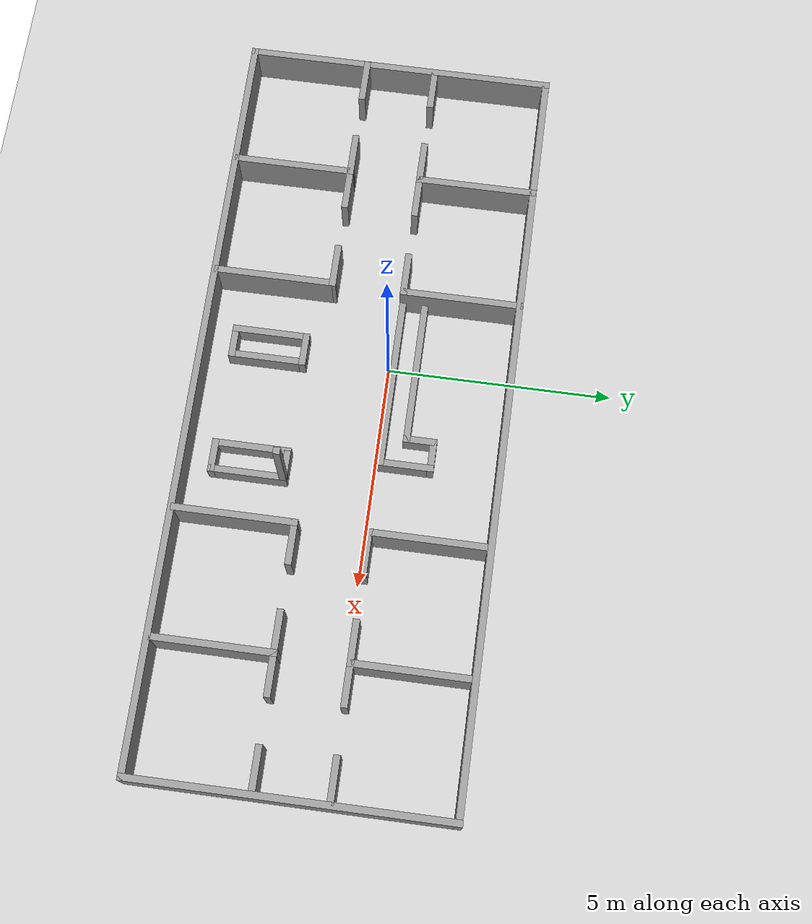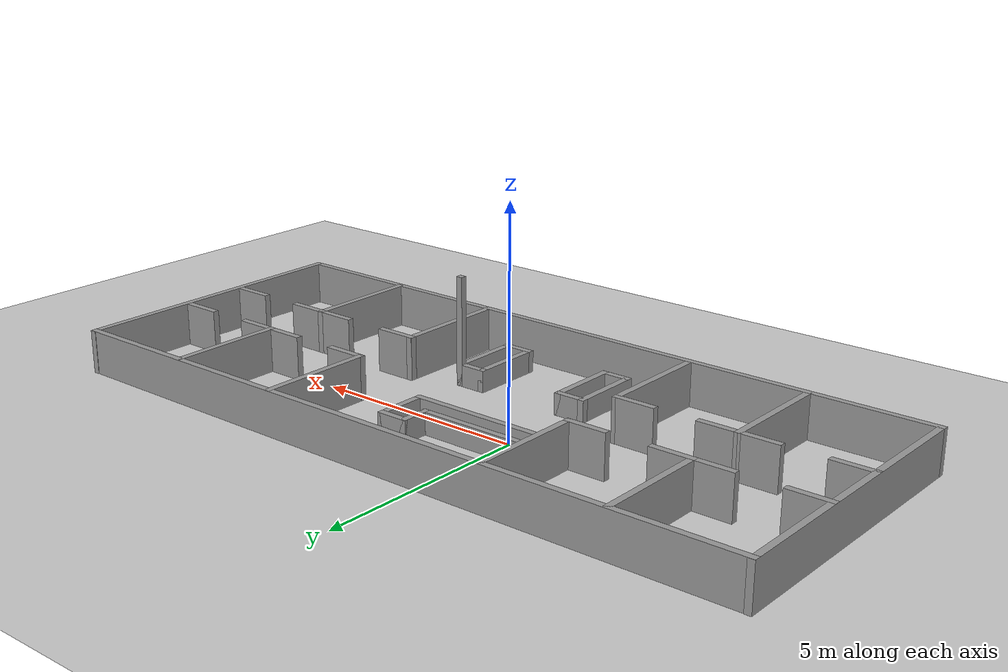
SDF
<sdf version="1.7">
 <world name="default">
  <light name="sun" type="directional">
   <pose>0 0 10 0 -0 0</pose>
   <diffuse>0.8 0.8 0.8 1</diffuse>
   <specular>0.2 0.2 0.2 1</specular>
   <attenuation>
    <range>1000</range>
    <constant>0.9</constant>
    <linear>0.01</linear>
    <quadratic>0.001</quadratic>
   </attenuation>
   <direction>-0.5 0.1 -0.9</direction>
   <spot><inner_angle>0</inner_angle><outer_angle>0</outer_angle><falloff>0</falloff></spot>
  </light>
  <model name="ground_plane">
   <static>1</static>
   <link name="link">
    <collision name="collision">
     <geometry><plane><normal>0 0 1</normal><size>100 100</size></plane></geometry>
     <surface>
      <contact><collide_bitmask>65535</collide_bitmask></contact>
      <friction><ode><mu>100</mu><mu2>50</mu2></ode></friction>
     </surface>
    </collision>
    <visual name="visual">
     <cast_shadows>0</cast_shadows>
     <geometry><plane><normal>0 0 1</normal><size>100 100</size></plane></geometry>
     <material>
      <script><uri>file://media/materials/scripts/gazebo.material</uri><name>Gazebo/Grey</name></script>
     </material>
    </visual>
   </link>
  </model>
  <gravity>0 0 -9.8</gravity>
  <magnetic_field>6e-06 2.3e-05 -4.2e-05</magnetic_field>
  <atmosphere type="adiabatic"/>
  <physics type="ode">
   <max_step_size>0.001</max_step_size>
   <real_time_factor>1</real_time_factor>
   <real_time_update_rate>1000</real_time_update_rate>
  </physics>
  <scene><ambient>0.4 0.4 0.4 1</ambient><background>0.7 0.7 0.7 1</background><shadows>1</shadows></scene>
  <audio><device>default</device></audio>
  <spherical_coordinates>
   <surface_model>EARTH_WGS84</surface_model>
   <latitude_deg>0</latitude_deg>
   <longitude_deg>0</longitude_deg>
   <elevation>0</elevation>
   <heading_deg>0</heading_deg>
  </spherical_coordinates>
  <model name="Motel">
   <pose>1.265 -0.697707 0 0 -0 0</pose>
   <link name="Wall_0">
    <collision name="Wall_0_Collision">
     <geometry><box><size>17 0.15 1</size></box></geometry>
     <pose>0 0 0.5 0 -0 0</pose>
    </collision>
    <visual name="Wall_0_Visual">
     <pose>0 0 0.5 0 -0 0</pose>
     <geometry><box><size>17 0.15 1</size></box></geometry>
     <material>
      <script><uri>file://media/materials/scripts/gazebo.material</uri><name>Gazebo/Grey</name></script>
      <ambient>1 1 1 1</ambient>
     </material>
     <meta><layer>0</layer></meta>
    </visual>
    <pose>-0 -3.44229 0 0 -0 3.14159</pose>
   </link>
   <link name="Wall_1">
    <collision name="Wall_1_Collision">
     <geometry><box><size>7.03459 0.15 1</size></box></geometry>
     <pose>0 0 0.5 0 -0 0</pose>
    </collision>
    <visual name="Wall_1_Visual">
     <pose>0 0 0.5 0 -0 0</pose>
     <geometry><box><size>7.03459 0.15 1</size></box></geometry>
     <material>
      <script><uri>file://media/materials/scripts/gazebo.material</uri><name>Gazebo/Grey</name></script>
      <ambient>1 1 1 1</ambient>
     </material>
     <meta><layer>0</layer></meta>
    </visual>
    <pose>-8.425 0 0 0 -0 1.5708</pose>
   </link>
   <link name="Wall_10">
    <collision name="Wall_10_Collision">
     <geometry><box><size>2.75 0.15 1</size></box></geometry>
     <pose>0 0 0.5 0 -0 0</pose>
    </collision>
    <visual name="Wall_10_Visual">
     <pose>0 0 0.5 0 -0 0</pose>
     <geometry><box><size>2.75 0.15 1</size></box></geometry>
     <material>
      <script><uri>file://media/materials/scripts/gazebo.material</uri><name>Gazebo/Grey</name></script>
      <ambient>1 1 1 1</ambient>
     </material>
     <meta><layer>0</layer></meta>
    </visual>
    <pose>2.741 -2.07629 0 0 -0 -1.5708</pose>
   </link>
   <link name="Wall_100">
    <collision name="Wall_100_Collision">
     <geometry><box><size>1 0.15 1</size></box></geometry>
     <pose>0 0 0.5 0 -0 0</pose>
    </collision>
    <visual name="Wall_100_Visual">
     <pose>0 0 0.5 0 -0 0</pose>
     <geometry><box><size>1 0.15 1</size></box></geometry>
     <material>
      <script><uri>file://media/materials/scripts/gazebo.material</uri><name>Gazebo/Grey</name></script>
      <ambient>1 1 1 1</ambient>
     </material>
     <meta><layer>0</layer></meta>
    </visual>
    <pose>-7.992 0.823707 0 0 -0 3.14159</pose>
   </link>
   <link name="Wall_102">
    <collision name="Wall_102_Collision">
     <geometry><box><size>1 0.15 1</size></box></geometry>
     <pose>0 0 0.5 0 -0 0</pose>
    </collision>
    <visual name="Wall_102_Visual">
     <pose>0 0 0.5 0 -0 0</pose>
     <geometry><box><size>1 0.15 1</size></box></geometry>
     <material>
      <script><uri>file://media/materials/scripts/gazebo.material</uri><name>Gazebo/Grey</name></script>
      <ambient>1 1 1 1</ambient>
     </material>
     <meta><layer>0</layer></meta>
    </visual>
    <pose>-5.192 0.823707 0 0 -0 0</pose>
   </link>
   <link name="Wall_105">
    <collision name="Wall_105_Collision">
     <geometry><box><size>2.75 0.15 1</size></box></geometry>
     <pose>0 0 0.5 0 -0 0</pose>
    </collision>
    <visual name="Wall_105_Visual">
     <pose>0 0 0.5 0 -0 0</pose>
     <geometry><box><size>2.75 0.15 1</size></box></geometry>
     <material>
      <script><uri>file://media/materials/scripts/gazebo.material</uri><name>Gazebo/Grey</name></script>
      <ambient>1 1 1 1</ambient>
     </material>
     <meta><layer>0</layer></meta>
    </visual>
    <pose>-2.817 2.12371 0 0 -0 1.5708</pose>
   </link>
   <link name="Wall_107">
    <collision name="Wall_107_Collision">
     <geometry><box><size>1 0.15 1</size></box></geometry>
     <pose>0 0 0.5 0 -0 0</pose>
    </collision>
    <visual name="Wall_107_Visual">
     <pose>0 0 0.5 0 -0 0</pose>
     <geometry><box><size>1 0.15 1</size></box></geometry>
     <material>
      <script><uri>file://media/materials/scripts/gazebo.material</uri><name>Gazebo/Grey</name></script>
      <ambient>1 1 1 1</ambient>
     </material>
     <meta><layer>0</layer></meta>
    </visual>
    <pose>-3.242 0.823707 0 0 -0 3.14159</pose>
   </link>
   <link name="Wall_115">
    <collision name="Wall_115_Collision">
     <geometry><box><size>0.75 0.15 0.5</size></box></geometry>
     <pose>0 0 0.25 0 -0 0</pose>
    </collision>
    <visual name="Wall_115_Visual">
     <pose>0 0 0.25 0 -0 0</pose>
     <geometry><box><size>0.75 0.15 0.5</size></box></geometry>
     <material>
      <script><uri>file://media/materials/scripts/gazebo.material</uri><name>Gazebo/Grey</name></script>
      <ambient>1 1 1 1</ambient>
     </material>
     <meta><layer>0</layer></meta>
    </visual>
    <pose>1.353 -1.22129 0 0 -0 0</pose>
   </link>
   <link name="Wall_116">
    <collision name="Wall_116_Collision">
     <geometry><box><size>1.75 0.15 0.5</size></box></geometry>
     <pose>0 0 0.25 0 -0 0</pose>
    </collision>
    <visual name="Wall_116_Visual">
     <pose>0 0 0.25 0 -0 0</pose>
     <geometry><box><size>1.75 0.15 0.5</size></box></geometry>
     <material>
      <script><uri>file://media/materials/scripts/gazebo.material</uri><name>Gazebo/Grey</name></script>
      <ambient>1 1 1 1</ambient>
     </material>
     <meta><layer>0</layer></meta>
    </visual>
    <pose>1.653 -2.02129 0 0 -0 -1.5708</pose>
   </link>
   <link name="Wall_117">
    <collision name="Wall_117_Collision">
     <geometry><box><size>0.75 0.15 0.5</size></box></geometry>
     <pose>0 0 0.25 0 -0 0</pose>
    </collision>
    <visual name="Wall_117_Visual">
     <pose>0 0 0.25 0 -0 0</pose>
     <geometry><box><size>0.75 0.15 0.5</size></box></geometry>
     <material>
      <script><uri>file://media/materials/scripts/gazebo.material</uri><name>Gazebo/Grey</name></script>
      <ambient>1 1 1 1</ambient>
     </material>
     <meta><layer>0</layer></meta>
    </visual>
    <pose>1.353 -2.82129 0 0 -0 3.14159</pose>
   </link>
   <link name="Wall_118">
    <collision name="Wall_118_Collision">
     <geometry><box><size>1.75 0.15 0.5</size></box></geometry>
     <pose>0 0 0.25 0 -0 0</pose>
    </collision>
    <visual name="Wall_118_Visual">
     <pose>0 0 0.25 0 -0 0</pose>
     <geometry><box><size>1.75 0.15 0.5</size></box></geometry>
     <material>
      <script><uri>file://media/materials/scripts/gazebo.material</uri><name>Gazebo/Grey</name></script>
      <ambient>1 1 1 1</ambient>
     </material>
     <meta><layer>0</layer></meta>
    </visual>
    <pose>1.053 -2.02129 0 0 -0 1.5708</pose>
   </link>
   <link name="Wall_12">
    <collision name="Wall_12_Collision">
     <geometry><box><size>2.75 0.15 1</size></box></geometry>
     <pose>0 0 0.5 0 -0 0</pose>
    </collision>
    <visual name="Wall_12_Visual">
     <pose>0 0 0.5 0 -0 0</pose>
     <geometry><box><size>2.75 0.15 1</size></box></geometry>
     <material>
      <script><uri>file://media/materials/scripts/gazebo.material</uri><name>Gazebo/Grey</name></script>
      <ambient>1 1 1 1</ambient>
     </material>
     <meta><layer>0</layer></meta>
    </visual>
    <pose>5.541 2.12371 0 0 -0 -1.5708</pose>
   </link>
   <link name="Wall_16">
    <collision name="Wall_16_Collision">
     <geometry><box><size>2.75 0.15 1</size></box></geometry>
     <pose>0 0 0.5 0 -0 0</pose>
    </collision>
    <visual name="Wall_16_Visual">
     <pose>0 0 0.5 0 -0 0</pose>
     <geometry><box><size>2.75 0.15 1</size></box></geometry>
     <material>
      <script><uri>file://media/materials/scripts/gazebo.material</uri><name>Gazebo/Grey</name></script>
      <ambient>1 1 1 1</ambient>
     </material>
     <meta><layer>0</layer></meta>
    </visual>
    <pose>2.741 2.12371 0 0 -0 1.5708</pose>
   </link>
   <link name="Wall_19">
    <collision name="Wall_19_Collision">
     <geometry><box><size>2.75 0.15 1</size></box></geometry>
     <pose>0 0 0.5 0 -0 0</pose>
    </collision>
    <visual name="Wall_19_Visual">
     <pose>0 0 0.5 0 -0 0</pose>
     <geometry><box><size>2.75 0.15 1</size></box></geometry>
     <material>
      <script><uri>file://media/materials/scripts/gazebo.material</uri><name>Gazebo/Grey</name></script>
      <ambient>1 1 1 1</ambient>
     </material>
     <meta><layer>0</layer></meta>
    </visual>
    <pose>-5.61676 -2.07629 0 0 -0 -1.57061</pose>
   </link>
   <link name="Wall_22">
    <collision name="Wall_22_Collision">
     <geometry><box><size>2.75 0.15 1</size></box></geometry>
     <pose>0 0 0.5 0 -0 0</pose>
    </collision>
    <visual name="Wall_22_Visual">
     <pose>0 0 0.5 0 -0 0</pose>
     <geometry><box><size>2.75 0.15 1</size></box></geometry>
     <material>
      <script><uri>file://media/materials/scripts/gazebo.material</uri><name>Gazebo/Grey</name></script>
      <ambient>1 1 1 1</ambient>
     </material>
     <meta><layer>0</layer></meta>
    </visual>
    <pose>-2.81676 -2.07629 0 0 -0 -1.57061</pose>
   </link>
   <link name="Wall_25">
    <collision name="Wall_25_Collision">
     <geometry><box><size>2.75 0.15 1</size></box></geometry>
     <pose>0 0 0.5 0 -0 0</pose>
    </collision>
    <visual name="Wall_25_Visual">
     <pose>0 0 0.5 0 -0 0</pose>
     <geometry><box><size>2.75 0.15 1</size></box></geometry>
     <material>
      <script><uri>file://media/materials/scripts/gazebo.material</uri><name>Gazebo/Grey</name></script>
      <ambient>1 1 1 1</ambient>
     </material>
     <meta><layer>0</layer></meta>
    </visual>
    <pose>-5.617 2.12371 0 0 -0 1.5708</pose>
   </link>
   <link name="Wall_3">
    <collision name="Wall_3_Collision">
     <geometry><box><size>7.03459 0.15 1</size></box></geometry>
     <pose>0 0 0.5 0 -0 0</pose>
    </collision>
    <visual name="Wall_3_Visual">
     <pose>0 0 0.5 0 -0 0</pose>
     <geometry><box><size>7.03459 0.15 1</size></box></geometry>
     <material>
      <script><uri>file://media/materials/scripts/gazebo.material</uri><name>Gazebo/Grey</name></script>
      <ambient>1 1 1 1</ambient>
     </material>
     <meta><layer>0</layer></meta>
    </visual>
    <pose>8.425 0 0 0 -0 1.5708</pose>
   </link>
   <link name="Wall_30">
    <collision name="Wall_30_Collision">
     <geometry><box><size>4 0.15 0.5</size></box></geometry>
     <pose>0 0 0.25 0 -0 0</pose>
    </collision>
    <visual name="Wall_30_Visual">
     <pose>0 0 0.25 0 -0 0</pose>
     <geometry><box><size>4 0.15 0.5</size></box></geometry>
     <material>
      <script><uri>file://media/materials/scripts/gazebo.material</uri><name>Gazebo/Grey</name></script>
      <ambient>1 1 1 1</ambient>
     </material>
     <meta><layer>0</layer></meta>
    </visual>
    <pose>-0.891759 0.823707 0 0 -0 0</pose>
   </link>
   <link name="Wall_31">
    <collision name="Wall_31_Collision">
     <geometry><box><size>1.25 0.15 0.5</size></box></geometry>
     <pose>0 0 0.25 0 -0 0</pose>
    </collision>
    <visual name="Wall_31_Visual">
     <pose>0 0 0.25 0 -0 0</pose>
     <geometry><box><size>1.25 0.15 0.5</size></box></geometry>
     <material>
      <script><uri>file://media/materials/scripts/gazebo.material</uri><name>Gazebo/Grey</name></script>
      <ambient>1 1 1 1</ambient>
     </material>
     <meta><layer>0</layer></meta>
    </visual>
    <pose>1.03348 1.37371 0 0 -0 1.5708</pose>
   </link>
   <link name="Wall_32">
    <collision name="Wall_32_Collision">
     <geometry><box><size>0.75 0.15 0.5</size></box></geometry>
     <pose>0 0 0.25 0 -0 0</pose>
    </collision>
    <visual name="Wall_32_Visual">
     <pose>0 0 0.25 0 -0 0</pose>
     <geometry><box><size>0.75 0.15 0.5</size></box></geometry>
     <material>
      <script><uri>file://media/materials/scripts/gazebo.material</uri><name>Gazebo/Grey</name></script>
      <ambient>1 1 1 1</ambient>
     </material>
     <meta><layer>0</layer></meta>
    </visual>
    <pose>0.733483 1.92371 0 0 -0 3.14159</pose>
   </link>
   <link name="Wall_33">
    <collision name="Wall_33_Collision">
     <geometry><box><size>0.75 0.15 0.5</size></box></geometry>
     <pose>0 0 0.25 0 -0 0</pose>
    </collision>
    <visual name="Wall_33_Visual">
     <pose>0 0 0.25 0 -0 0</pose>
     <geometry><box><size>0.75 0.15 0.5</size></box></geometry>
     <material>
      <script><uri>file://media/materials/scripts/gazebo.material</uri><name>Gazebo/Grey</name></script>
      <ambient>1 1 1 1</ambient>
     </material>
     <meta><layer>0</layer></meta>
    </visual>
    <pose>0.433483 1.62371 0 0 -0 -1.5708</pose>
   </link>
   <link name="Wall_34">
    <collision name="Wall_34_Collision">
     <geometry><box><size>3.25 0.15 0.5</size></box></geometry>
     <pose>0 0 0.25 0 -0 0</pose>
    </collision>
    <visual name="Wall_34_Visual">
     <pose>0 0 0.25 0 -0 0</pose>
     <geometry><box><size>3.25 0.15 0.5</size></box></geometry>
     <material>
      <script><uri>file://media/materials/scripts/gazebo.material</uri><name>Gazebo/Grey</name></script>
      <ambient>1 1 1 1</ambient>
     </material>
     <meta><layer>0</layer></meta>
    </visual>
    <pose>-1.11652 1.32371 0 0 -0 3.14159</pose>
   </link>
   <link name="Wall_39">
    <collision name="Wall_39_Collision">
     <geometry><box><size>0.75 0.15 0.5</size></box></geometry>
     <pose>0 0 0.25 0 -0 0</pose>
    </collision>
    <visual name="Wall_39_Visual">
     <pose>0 0 0.25 0 -0 0</pose>
     <geometry><box><size>0.75 0.15 0.5</size></box></geometry>
     <material>
      <script><uri>file://media/materials/scripts/gazebo.material</uri><name>Gazebo/Grey</name></script>
      <ambient>1 1 1 1</ambient>
     </material>
     <meta><layer>0</layer></meta>
    </visual>
    <pose>-1.347 -2.81229 0 0 -0 0</pose>
   </link>
   <link name="Wall_4">
    <collision name="Wall_4_Collision">
     <geometry><box><size>17 0.15 1</size></box></geometry>
     <pose>0 0 0.5 0 -0 0</pose>
    </collision>
    <visual name="Wall_4_Visual">
     <pose>0 0 0.5 0 -0 0</pose>
     <geometry><box><size>17 0.15 1</size></box></geometry>
     <material>
      <script><uri>file://media/materials/scripts/gazebo.material</uri><name>Gazebo/Grey</name></script>
      <ambient>1 1 1 1</ambient>
     </material>
     <meta><layer>0</layer></meta>
    </visual>
    <pose>-0 3.43365 0 0 -0 3.14159</pose>
   </link>
   <link name="Wall_40">
    <collision name="Wall_40_Collision">
     <geometry><box><size>1.741 0.15 0.5</size></box></geometry>
     <pose>0 0 0.25 0 -0 0</pose>
    </collision>
    <visual name="Wall_40_Visual">
     <pose>0 0 0.25 0 -0 0</pose>
     <geometry><box><size>1.741 0.15 0.5</size></box></geometry>
     <material>
      <script><uri>file://media/materials/scripts/gazebo.material</uri><name>Gazebo/Grey</name></script>
      <ambient>1 1 1 1</ambient>
     </material>
     <meta><layer>0</layer></meta>
    </visual>
    <pose>-1.047 -2.01679 0 0 -0 1.5708</pose>
   </link>
   <link name="Wall_41">
    <collision name="Wall_41_Collision">
     <geometry><box><size>0.75 0.15 0.5</size></box></geometry>
     <pose>0 0 0.25 0 -0 0</pose>
    </collision>
    <visual name="Wall_41_Visual">
     <pose>0 0 0.25 0 -0 0</pose>
     <geometry><box><size>0.75 0.15 0.5</size></box></geometry>
     <material>
      <script><uri>file://media/materials/scripts/gazebo.material</uri><name>Gazebo/Grey</name></script>
      <ambient>1 1 1 1</ambient>
     </material>
     <meta><layer>0</layer></meta>
    </visual>
    <pose>-1.347 -1.22129 0 0 -0 3.14159</pose>
   </link>
   <link name="Wall_42">
    <collision name="Wall_42_Collision">
     <geometry><box><size>1.74135 0.15 0.5</size></box></geometry>
     <pose>0 0 0.25 0 -0 0</pose>
    </collision>
    <visual name="Wall_42_Visual">
     <pose>0 0 0.25 0 -0 0</pose>
     <geometry><box><size>1.74135 0.15 0.5</size></box></geometry>
     <material>
      <script><uri>file://media/materials/scripts/gazebo.material</uri><name>Gazebo/Grey</name></script>
      <ambient>1 1 1 1</ambient>
     </material>
     <meta><layer>0</layer></meta>
    </visual>
    <pose>-1.647 -2.01679 0 0 -0 -1.5708</pose>
   </link>
   <link name="Wall_50">
    <collision name="Wall_50_Collision">
     <geometry><box><size>0.15 0.15 2.5</size></box></geometry>
     <pose>0 0 1.25 0 -0 0</pose>
    </collision>
    <visual name="Wall_50_Visual">
     <pose>0 0 1.25 0 -0 0</pose>
     <geometry><box><size>0.15 0.15 2.5</size></box></geometry>
     <material>
      <script><uri>file://media/materials/scripts/gazebo.material</uri><name>Gazebo/Grey</name></script>
      <ambient>1 1 1 1</ambient>
     </material>
     <meta><layer>0</layer></meta>
    </visual>
    <pose>1.653 -1.22129 0 0 -0 0</pose>
   </link>
   <link name="Wall_59">
    <collision name="Wall_59_Collision">
     <geometry><box><size>1 0.15 1</size></box></geometry>
     <pose>0 0 0.5 0 -0 0</pose>
    </collision>
    <visual name="Wall_59_Visual">
     <pose>0 0 0.5 0 -0 0</pose>
     <geometry><box><size>1 0.15 1</size></box></geometry>
     <material>
      <script><uri>file://media/materials/scripts/gazebo.material</uri><name>Gazebo/Grey</name></script>
      <ambient>1 1 1 1</ambient>
     </material>
     <meta><layer>0</layer></meta>
    </visual>
    <pose>5.966 -0.776293 0 0 -0 0</pose>
   </link>
   <link name="Wall_6">
    <collision name="Wall_6_Collision">
     <geometry><box><size>2.75 0.15 1</size></box></geometry>
     <pose>0 0 0.5 0 -0 0</pose>
    </collision>
    <visual name="Wall_6_Visual">
     <pose>0 0 0.5 0 -0 0</pose>
     <geometry><box><size>2.75 0.15 1</size></box></geometry>
     <material>
      <script><uri>file://media/materials/scripts/gazebo.material</uri><name>Gazebo/Grey</name></script>
      <ambient>1 1 1 1</ambient>
     </material>
     <meta><layer>0</layer></meta>
    </visual>
    <pose>5.541 -2.07629 0 0 -0 1.5708</pose>
   </link>
   <link name="Wall_61">
    <collision name="Wall_61_Collision">
     <geometry><box><size>1 0.15 1</size></box></geometry>
     <pose>0 0 0.5 0 -0 0</pose>
    </collision>
    <visual name="Wall_61_Visual">
     <pose>0 0 0.5 0 -0 0</pose>
     <geometry><box><size>1 0.15 1</size></box></geometry>
     <material>
      <script><uri>file://media/materials/scripts/gazebo.material</uri><name>Gazebo/Grey</name></script>
      <ambient>1 1 1 1</ambient>
     </material>
     <meta><layer>0</layer></meta>
    </visual>
    <pose>7.916 -0.776293 0 0 -0 0</pose>
   </link>
   <link name="Wall_63">
    <collision name="Wall_63_Collision">
     <geometry><box><size>1 0.15 1</size></box></geometry>
     <pose>0 0 0.5 0 -0 0</pose>
    </collision>
    <visual name="Wall_63_Visual">
     <pose>0 0 0.5 0 -0 0</pose>
     <geometry><box><size>1 0.15 1</size></box></geometry>
     <material>
      <script><uri>file://media/materials/scripts/gazebo.material</uri><name>Gazebo/Grey</name></script>
      <ambient>1 1 1 1</ambient>
     </material>
     <meta><layer>0</layer></meta>
    </visual>
    <pose>5.116 -0.776293 0 0 -0 3.14159</pose>
   </link>
   <link name="Wall_65">
    <collision name="Wall_65_Collision">
     <geometry><box><size>1 0.15 1</size></box></geometry>
     <pose>0 0 0.5 0 -0 0</pose>
    </collision>
    <visual name="Wall_65_Visual">
     <pose>0 0 0.5 0 -0 0</pose>
     <geometry><box><size>1 0.15 1</size></box></geometry>
     <material>
      <script><uri>file://media/materials/scripts/gazebo.material</uri><name>Gazebo/Grey</name></script>
      <ambient>1 1 1 1</ambient>
     </material>
     <meta><layer>0</layer></meta>
    </visual>
    <pose>3.166 -0.776293 0 0 -0 3.14159</pose>
   </link>
   <link name="Wall_67">
    <collision name="Wall_67_Collision">
     <geometry><box><size>1 0.15 1</size></box></geometry>
     <pose>0 0 0.5 0 -0 0</pose>
    </collision>
    <visual name="Wall_67_Visual">
     <pose>0 0 0.5 0 -0 0</pose>
     <geometry><box><size>1 0.15 1</size></box></geometry>
     <material>
      <script><uri>file://media/materials/scripts/gazebo.material</uri><name>Gazebo/Grey</name></script>
      <ambient>1 1 1 1</ambient>
     </material>
     <meta><layer>0</layer></meta>
    </visual>
    <pose>3.166 0.823707 0 0 -0 0</pose>
   </link>
   <link name="Wall_69">
    <collision name="Wall_69_Collision">
     <geometry><box><size>1 0.15 1</size></box></geometry>
     <pose>0 0 0.5 0 -0 0</pose>
    </collision>
    <visual name="Wall_69_Visual">
     <pose>0 0 0.5 0 -0 0</pose>
     <geometry><box><size>1 0.15 1</size></box></geometry>
     <material>
      <script><uri>file://media/materials/scripts/gazebo.material</uri><name>Gazebo/Grey</name></script>
      <ambient>1 1 1 1</ambient>
     </material>
     <meta><layer>0</layer></meta>
    </visual>
    <pose>5.116 0.823707 0 0 -0 3.14159</pose>
   </link>
   <link name="Wall_71">
    <collision name="Wall_71_Collision">
     <geometry><box><size>1 0.15 1</size></box></geometry>
     <pose>0 0 0.5 0 -0 0</pose>
    </collision>
    <visual name="Wall_71_Visual">
     <pose>0 0 0.5 0 -0 0</pose>
     <geometry><box><size>1 0.15 1</size></box></geometry>
     <material>
      <script><uri>file://media/materials/scripts/gazebo.material</uri><name>Gazebo/Grey</name></script>
      <ambient>1 1 1 1</ambient>
     </material>
     <meta><layer>0</layer></meta>
    </visual>
    <pose>5.966 0.823707 0 0 -0 0</pose>
   </link>
   <link name="Wall_74">
    <collision name="Wall_74_Collision">
     <geometry><box><size>1 0.15 1</size></box></geometry>
     <pose>0 0 0.5 0 -0 0</pose>
    </collision>
    <visual name="Wall_74_Visual">
     <pose>0 0 0.5 0 -0 0</pose>
     <geometry><box><size>1 0.15 1</size></box></geometry>
     <material>
      <script><uri>file://media/materials/scripts/gazebo.material</uri><name>Gazebo/Grey</name></script>
      <ambient>1 1 1 1</ambient>
     </material>
     <meta><layer>0</layer></meta>
    </visual>
    <pose>7.916 0.823707 0 0 -0 0</pose>
   </link>
   <link name="Wall_84">
    <collision name="Wall_84_Collision">
     <geometry><box><size>1 0.15 1</size></box></geometry>
     <pose>0 0 0.5 0 -0 0</pose>
    </collision>
    <visual name="Wall_84_Visual">
     <pose>0 0 0.5 0 -0 0</pose>
     <geometry><box><size>1 0.15 1</size></box></geometry>
     <material>
      <script><uri>file://media/materials/scripts/gazebo.material</uri><name>Gazebo/Grey</name></script>
      <ambient>1 1 1 1</ambient>
     </material>
     <meta><layer>0</layer></meta>
    </visual>
    <pose>-3.242 -0.776293 0 0 -0 3.14159</pose>
   </link>
   <link name="Wall_86">
    <collision name="Wall_86_Collision">
     <geometry><box><size>1 0.15 1</size></box></geometry>
     <pose>0 0 0.5 0 -0 0</pose>
    </collision>
    <visual name="Wall_86_Visual">
     <pose>0 0 0.5 0 -0 0</pose>
     <geometry><box><size>1 0.15 1</size></box></geometry>
     <material>
      <script><uri>file://media/materials/scripts/gazebo.material</uri><name>Gazebo/Grey</name></script>
      <ambient>1 1 1 1</ambient>
     </material>
     <meta><layer>0</layer></meta>
    </visual>
    <pose>-5.192 -0.776293 0 0 -0 3.14159</pose>
   </link>
   <link name="Wall_88">
    <collision name="Wall_88_Collision">
     <geometry><box><size>1 0.15 1</size></box></geometry>
     <pose>0 0 0.5 0 -0 0</pose>
    </collision>
    <visual name="Wall_88_Visual">
     <pose>0 0 0.5 0 -0 0</pose>
     <geometry><box><size>1 0.15 1</size></box></geometry>
     <material>
      <script><uri>file://media/materials/scripts/gazebo.material</uri><name>Gazebo/Grey</name></script>
      <ambient>1 1 1 1</ambient>
     </material>
     <meta><layer>0</layer></meta>
    </visual>
    <pose>-6.042 -0.776293 0 0 -0 3.14159</pose>
   </link>
   <link name="Wall_90">
    <collision name="Wall_90_Collision">
     <geometry><box><size>1 0.15 1</size></box></geometry>
     <pose>0 0 0.5 0 -0 0</pose>
    </collision>
    <visual name="Wall_90_Visual">
     <pose>0 0 0.5 0 -0 0</pose>
     <geometry><box><size>1 0.15 1</size></box></geometry>
     <material>
      <script><uri>file://media/materials/scripts/gazebo.material</uri><name>Gazebo/Grey</name></script>
      <ambient>1 1 1 1</ambient>
     </material>
     <meta><layer>0</layer></meta>
    </visual>
    <pose>-7.992 -0.776293 0 0 -0 3.14159</pose>
   </link>
   <link name="Wall_98">
    <collision name="Wall_98_Collision">
     <geometry><box><size>1 0.15 1</size></box></geometry>
     <pose>0 0 0.5 0 -0 0</pose>
    </collision>
    <visual name="Wall_98_Visual">
     <pose>0 0 0.5 0 -0 0</pose>
     <geometry><box><size>1 0.15 1</size></box></geometry>
     <material>
      <script><uri>file://media/materials/scripts/gazebo.material</uri><name>Gazebo/Grey</name></script>
      <ambient>1 1 1 1</ambient>
     </material>
     <meta><layer>0</layer></meta>
    </visual>
    <pose>-6.042 0.823707 0 0 -0 3.14159</pose>
   </link>
   <static>1</static>
  </model>
 </world>
</sdf>
